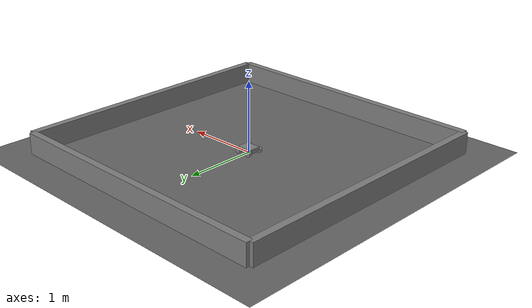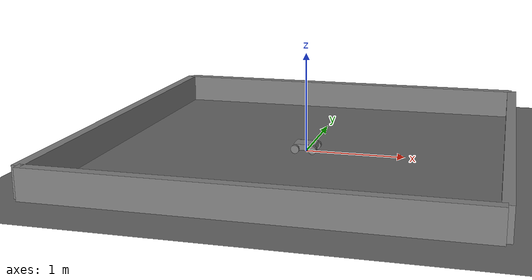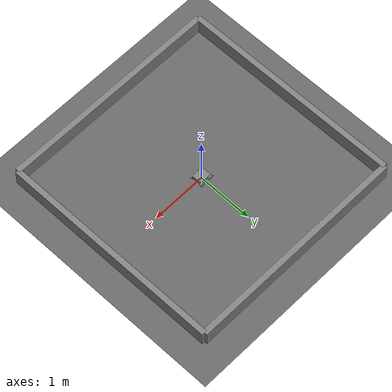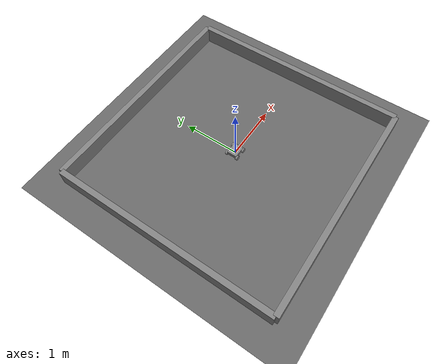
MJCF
<mujoco model="mse6_4wd_skidsteer">
  <compiler angle="radian" coordinate="local"/>
  <option timestep="0.00833" integrator="implicitfast" gravity="0 0 -9.81"/>
  <default>
    <geom condim="3" friction="1 0.005 0.0001" solref="0.01 1" solimp="0.9 0.95 0.001"/>
    <joint damping="0.01"/>
  </default>
  <worldbody>
    <light pos="0 0 3"/>
    <geom name="floor" type="plane" size="5 5 0.1" rgba="0.4 0.4 0.4 1"/>
    <!-- Perimeter walls so the rangefinder lidar has geometry to hit. -->
    <geom name="wall_n" type="box" pos="0 2 0.15" size="2 0.05 0.15"/>
    <geom name="wall_s" type="box" pos="0 -2 0.15" size="2 0.05 0.15"/>
    <geom name="wall_e" type="box" pos="2 0 0.15" size="0.05 2 0.15"/>
    <geom name="wall_w" type="box" pos="-2 0 0.15" size="0.05 2 0.15"/>
    <body name="chassis" pos="0 0 0.06">
      <freejoint name="root"/>
      <geom name="chassis_geom" type="box" size="0.11 0.09 0.03" mass="2.7"/>
      <!-- RoverMuJoCoEnv injects the full N-sector lidar site ring after imu_site,
           with geometry from MujocoSimConfig (no hand-authored lidar sites here). -->
      <site name="imu_site" pos="0 0 0"/>
      <!-- Forward-facing RGB camera for vision-on RSSM fine-tune (looks down -z
           toward +x, up=+z). Rendered offscreen via mujoco.Renderer when enabled. -->
      <camera name="rover_cam" mode="fixed" pos="0.11 0 0.05" xyaxes="0 -1 0 0 0 1"/>
      <body name="wheel_fl" pos="0.09 0.10 -0.018">
        <joint name="j_fl" type="hinge" axis="0 1 0"/>
        <geom name="g_fl" type="cylinder" size="0.042 0.02" quat="0.7071 0.7071 0 0" mass="0.05"/>
      </body>
      <body name="wheel_fr" pos="0.09 -0.10 -0.018">
        <joint name="j_fr" type="hinge" axis="0 1 0"/>
        <geom name="g_fr" type="cylinder" size="0.042 0.02" quat="0.7071 0.7071 0 0" mass="0.05"/>
      </body>
      <body name="wheel_rl" pos="-0.09 0.10 -0.018">
        <joint name="j_rl" type="hinge" axis="0 1 0"/>
        <geom name="g_rl" type="cylinder" size="0.042 0.02" quat="0.7071 0.7071 0 0" mass="0.05"/>
      </body>
      <body name="wheel_rr" pos="-0.09 -0.10 -0.018">
        <joint name="j_rr" type="hinge" axis="0 1 0"/>
        <geom name="g_rr" type="cylinder" size="0.042 0.02" quat="0.7071 0.7071 0 0" mass="0.05"/>
      </body>
    </body>
  </worldbody>
  <actuator>
    <velocity name="a_fl" joint="j_fl" kv="0.05"/>
    <velocity name="a_fr" joint="j_fr" kv="0.05"/>
    <velocity name="a_rl" joint="j_rl" kv="0.05"/>
    <velocity name="a_rr" joint="j_rr" kv="0.05"/>
  </actuator>
  <sensor>
    <accelerometer name="imu_acc" site="imu_site"/>
    <gyro name="imu_gyro" site="imu_site"/>
    <!-- RoverMuJoCoEnv injects N rangefinder sensors after the gyro. -->
  </sensor>
</mujoco>
